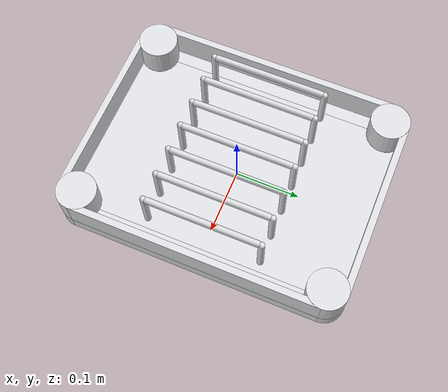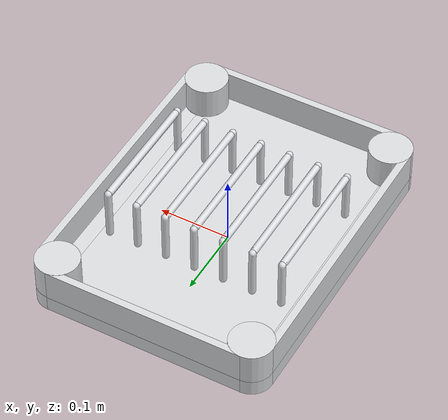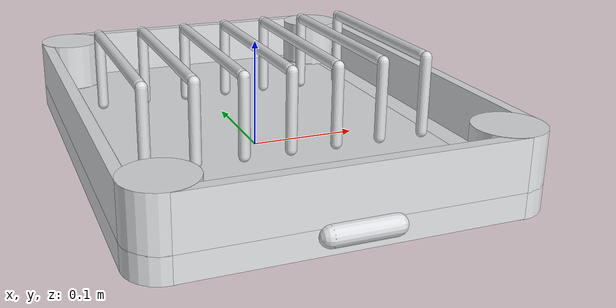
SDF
<?xml version="1.0"?>
<sdf version="1.6">
  <model name="dish_drainer">
    <static>true</static>
    <link name="link">
      <visual name="tray_a">
        <pose>0 0 0.011 0 0 0</pose>
        <geometry><box><size>0.279 0.442 0.022</size></box></geometry>
        <material><pbr><metal><metalness>0.00</metalness><roughness>0.55</roughness></metal></pbr><ambient>0.860 0.870 0.880 1</ambient><diffuse>0.860 0.870 0.880 1</diffuse><specular>0.3 0.3 0.3 1</specular><emissive>0 0 0 1</emissive></material>
      </visual>
      <visual name="tray_b0">
        <pose>-0.1545 0 0.011 0 0 0</pose>
        <geometry><box><size>0.03 0.382 0.022</size></box></geometry>
        <material><pbr><metal><metalness>0.00</metalness><roughness>0.55</roughness></metal></pbr><ambient>0.860 0.870 0.880 1</ambient><diffuse>0.860 0.870 0.880 1</diffuse><specular>0.3 0.3 0.3 1</specular><emissive>0 0 0 1</emissive></material>
      </visual>
      <visual name="tray_b1">
        <pose>0.1545 0 0.011 0 0 0</pose>
        <geometry><box><size>0.03 0.382 0.022</size></box></geometry>
        <material><pbr><metal><metalness>0.00</metalness><roughness>0.55</roughness></metal></pbr><ambient>0.860 0.870 0.880 1</ambient><diffuse>0.860 0.870 0.880 1</diffuse><specular>0.3 0.3 0.3 1</specular><emissive>0 0 0 1</emissive></material>
      </visual>
      <visual name="tray_c0">
        <pose>-0.1395 -0.191 0.011 0 0 0</pose>
        <geometry><cylinder><radius>0.03</radius><length>0.0226</length></cylinder></geometry>
        <material><pbr><metal><metalness>0.00</metalness><roughness>0.55</roughness></metal></pbr><ambient>0.860 0.870 0.880 1</ambient><diffuse>0.860 0.870 0.880 1</diffuse><specular>0.3 0.3 0.3 1</specular><emissive>0 0 0 1</emissive></material>
      </visual>
      <visual name="tray_c1">
        <pose>-0.1395 0.191 0.011 0 0 0</pose>
        <geometry><cylinder><radius>0.03</radius><length>0.02278</length></cylinder></geometry>
        <material><pbr><metal><metalness>0.00</metalness><roughness>0.55</roughness></metal></pbr><ambient>0.860 0.870 0.880 1</ambient><diffuse>0.860 0.870 0.880 1</diffuse><specular>0.3 0.3 0.3 1</specular><emissive>0 0 0 1</emissive></material>
      </visual>
      <visual name="tray_c2">
        <pose>0.1395 -0.191 0.011 0 0 0</pose>
        <geometry><cylinder><radius>0.03</radius><length>0.02296</length></cylinder></geometry>
        <material><pbr><metal><metalness>0.00</metalness><roughness>0.55</roughness></metal></pbr><ambient>0.860 0.870 0.880 1</ambient><diffuse>0.860 0.870 0.880 1</diffuse><specular>0.3 0.3 0.3 1</specular><emissive>0 0 0 1</emissive></material>
      </visual>
      <visual name="tray_c3">
        <pose>0.1395 0.191 0.011 0 0 0</pose>
        <geometry><cylinder><radius>0.03</radius><length>0.02314</length></cylinder></geometry>
        <material><pbr><metal><metalness>0.00</metalness><roughness>0.55</roughness></metal></pbr><ambient>0.860 0.870 0.880 1</ambient><diffuse>0.860 0.870 0.880 1</diffuse><specular>0.3 0.3 0.3 1</specular><emissive>0 0 0 1</emissive></material>
      </visual>
      <visual name="wall_n">
        <pose>0 0.216 0.0445 0 0 0</pose>
        <geometry><box><size>0.279 0.01 0.045</size></box></geometry>
        <material><pbr><metal><metalness>0.00</metalness><roughness>0.55</roughness></metal></pbr><ambient>0.860 0.870 0.880 1</ambient><diffuse>0.860 0.870 0.880 1</diffuse><specular>0.3 0.3 0.3 1</specular><emissive>0 0 0 1</emissive></material>
      </visual>
      <visual name="wall_s">
        <pose>0 -0.216 0.0445 0 0 0</pose>
        <geometry><box><size>0.279 0.01 0.045</size></box></geometry>
        <material><pbr><metal><metalness>0.00</metalness><roughness>0.55</roughness></metal></pbr><ambient>0.860 0.870 0.880 1</ambient><diffuse>0.860 0.870 0.880 1</diffuse><specular>0.3 0.3 0.3 1</specular><emissive>0 0 0 1</emissive></material>
      </visual>
      <visual name="wall_e">
        <pose>0.1645 0 0.0445 0 0 0</pose>
        <geometry><box><size>0.01 0.382 0.045</size></box></geometry>
        <material><pbr><metal><metalness>0.00</metalness><roughness>0.55</roughness></metal></pbr><ambient>0.860 0.870 0.880 1</ambient><diffuse>0.860 0.870 0.880 1</diffuse><specular>0.3 0.3 0.3 1</specular><emissive>0 0 0 1</emissive></material>
      </visual>
      <visual name="wall_w">
        <pose>-0.1645 0 0.0445 0 0 0</pose>
        <geometry><box><size>0.01 0.382 0.045</size></box></geometry>
        <material><pbr><metal><metalness>0.00</metalness><roughness>0.55</roughness></metal></pbr><ambient>0.860 0.870 0.880 1</ambient><diffuse>0.860 0.870 0.880 1</diffuse><specular>0.3 0.3 0.3 1</specular><emissive>0 0 0 1</emissive></material>
      </visual>
      <visual name="wall_corner0">
        <pose>-0.1395 -0.191 0.0445 0 0 0</pose>
        <geometry><cylinder><radius>0.03</radius><length>0.0456</length></cylinder></geometry>
        <material><pbr><metal><metalness>0.00</metalness><roughness>0.55</roughness></metal></pbr><ambient>0.860 0.870 0.880 1</ambient><diffuse>0.860 0.870 0.880 1</diffuse><specular>0.3 0.3 0.3 1</specular><emissive>0 0 0 1</emissive></material>
      </visual>
      <visual name="wall_corner1">
        <pose>-0.1395 0.191 0.0445 0 0 0</pose>
        <geometry><cylinder><radius>0.03</radius><length>0.0456</length></cylinder></geometry>
        <material><pbr><metal><metalness>0.00</metalness><roughness>0.55</roughness></metal></pbr><ambient>0.860 0.870 0.880 1</ambient><diffuse>0.860 0.870 0.880 1</diffuse><specular>0.3 0.3 0.3 1</specular><emissive>0 0 0 1</emissive></material>
      </visual>
      <visual name="wall_corner2">
        <pose>0.1395 -0.191 0.0445 0 0 0</pose>
        <geometry><cylinder><radius>0.03</radius><length>0.0456</length></cylinder></geometry>
        <material><pbr><metal><metalness>0.00</metalness><roughness>0.55</roughness></metal></pbr><ambient>0.860 0.870 0.880 1</ambient><diffuse>0.860 0.870 0.880 1</diffuse><specular>0.3 0.3 0.3 1</specular><emissive>0 0 0 1</emissive></material>
      </visual>
      <visual name="wall_corner3">
        <pose>0.1395 0.191 0.0445 0 0 0</pose>
        <geometry><cylinder><radius>0.03</radius><length>0.0456</length></cylinder></geometry>
        <material><pbr><metal><metalness>0.00</metalness><roughness>0.55</roughness></metal></pbr><ambient>0.860 0.870 0.880 1</ambient><diffuse>0.860 0.870 0.880 1</diffuse><specular>0.3 0.3 0.3 1</specular><emissive>0 0 0 1</emissive></material>
      </visual>
      <visual name="div0_post0">
        <pose>-0.126 -0.088 0.0615 0 0 0</pose>
        <geometry><capsule><radius>0.005</radius><length>0.069</length></capsule></geometry>
        <material><pbr><metal><metalness>0.00</metalness><roughness>0.55</roughness></metal></pbr><ambient>0.860 0.870 0.880 1</ambient><diffuse>0.860 0.870 0.880 1</diffuse><specular>0.3 0.3 0.3 1</specular><emissive>0 0 0 1</emissive></material>
      </visual>
      <visual name="div0_post1">
        <pose>-0.126 0.088 0.0615 0 0 0</pose>
        <geometry><capsule><radius>0.005</radius><length>0.069</length></capsule></geometry>
        <material><pbr><metal><metalness>0.00</metalness><roughness>0.55</roughness></metal></pbr><ambient>0.860 0.870 0.880 1</ambient><diffuse>0.860 0.870 0.880 1</diffuse><specular>0.3 0.3 0.3 1</specular><emissive>0 0 0 1</emissive></material>
      </visual>
      <visual name="div0_top">
        <pose>-0.126 0 0.096 1.570796 0 0</pose>
        <geometry><capsule><radius>0.005</radius><length>0.166</length></capsule></geometry>
        <material><pbr><metal><metalness>0.00</metalness><roughness>0.55</roughness></metal></pbr><ambient>0.860 0.870 0.880 1</ambient><diffuse>0.860 0.870 0.880 1</diffuse><specular>0.3 0.3 0.3 1</specular><emissive>0 0 0 1</emissive></material>
      </visual>
      <visual name="div1_post0">
        <pose>-0.084 -0.088 0.0615 0 0 0</pose>
        <geometry><capsule><radius>0.005</radius><length>0.069</length></capsule></geometry>
        <material><pbr><metal><metalness>0.00</metalness><roughness>0.55</roughness></metal></pbr><ambient>0.860 0.870 0.880 1</ambient><diffuse>0.860 0.870 0.880 1</diffuse><specular>0.3 0.3 0.3 1</specular><emissive>0 0 0 1</emissive></material>
      </visual>
      <visual name="div1_post1">
        <pose>-0.084 0.088 0.0615 0 0 0</pose>
        <geometry><capsule><radius>0.005</radius><length>0.069</length></capsule></geometry>
        <material><pbr><metal><metalness>0.00</metalness><roughness>0.55</roughness></metal></pbr><ambient>0.860 0.870 0.880 1</ambient><diffuse>0.860 0.870 0.880 1</diffuse><specular>0.3 0.3 0.3 1</specular><emissive>0 0 0 1</emissive></material>
      </visual>
      <visual name="div1_top">
        <pose>-0.084 0 0.096 1.570796 0 0</pose>
        <geometry><capsule><radius>0.005</radius><length>0.166</length></capsule></geometry>
        <material><pbr><metal><metalness>0.00</metalness><roughness>0.55</roughness></metal></pbr><ambient>0.860 0.870 0.880 1</ambient><diffuse>0.860 0.870 0.880 1</diffuse><specular>0.3 0.3 0.3 1</specular><emissive>0 0 0 1</emissive></material>
      </visual>
      <visual name="div2_post0">
        <pose>-0.042 -0.088 0.0615 0 0 0</pose>
        <geometry><capsule><radius>0.005</radius><length>0.069</length></capsule></geometry>
        <material><pbr><metal><metalness>0.00</metalness><roughness>0.55</roughness></metal></pbr><ambient>0.860 0.870 0.880 1</ambient><diffuse>0.860 0.870 0.880 1</diffuse><specular>0.3 0.3 0.3 1</specular><emissive>0 0 0 1</emissive></material>
      </visual>
      <visual name="div2_post1">
        <pose>-0.042 0.088 0.0615 0 0 0</pose>
        <geometry><capsule><radius>0.005</radius><length>0.069</length></capsule></geometry>
        <material><pbr><metal><metalness>0.00</metalness><roughness>0.55</roughness></metal></pbr><ambient>0.860 0.870 0.880 1</ambient><diffuse>0.860 0.870 0.880 1</diffuse><specular>0.3 0.3 0.3 1</specular><emissive>0 0 0 1</emissive></material>
      </visual>
      <visual name="div2_top">
        <pose>-0.042 0 0.096 1.570796 0 0</pose>
        <geometry><capsule><radius>0.005</radius><length>0.166</length></capsule></geometry>
        <material><pbr><metal><metalness>0.00</metalness><roughness>0.55</roughness></metal></pbr><ambient>0.860 0.870 0.880 1</ambient><diffuse>0.860 0.870 0.880 1</diffuse><specular>0.3 0.3 0.3 1</specular><emissive>0 0 0 1</emissive></material>
      </visual>
      <visual name="div3_post0">
        <pose>0 -0.088 0.0615 0 0 0</pose>
        <geometry><capsule><radius>0.005</radius><length>0.069</length></capsule></geometry>
        <material><pbr><metal><metalness>0.00</metalness><roughness>0.55</roughness></metal></pbr><ambient>0.860 0.870 0.880 1</ambient><diffuse>0.860 0.870 0.880 1</diffuse><specular>0.3 0.3 0.3 1</specular><emissive>0 0 0 1</emissive></material>
      </visual>
      <visual name="div3_post1">
        <pose>0 0.088 0.0615 0 0 0</pose>
        <geometry><capsule><radius>0.005</radius><length>0.069</length></capsule></geometry>
        <material><pbr><metal><metalness>0.00</metalness><roughness>0.55</roughness></metal></pbr><ambient>0.860 0.870 0.880 1</ambient><diffuse>0.860 0.870 0.880 1</diffuse><specular>0.3 0.3 0.3 1</specular><emissive>0 0 0 1</emissive></material>
      </visual>
      <visual name="div3_top">
        <pose>0 0 0.096 1.570796 0 0</pose>
        <geometry><capsule><radius>0.005</radius><length>0.166</length></capsule></geometry>
        <material><pbr><metal><metalness>0.00</metalness><roughness>0.55</roughness></metal></pbr><ambient>0.860 0.870 0.880 1</ambient><diffuse>0.860 0.870 0.880 1</diffuse><specular>0.3 0.3 0.3 1</specular><emissive>0 0 0 1</emissive></material>
      </visual>
      <visual name="div4_post0">
        <pose>0.042 -0.088 0.0615 0 0 0</pose>
        <geometry><capsule><radius>0.005</radius><length>0.069</length></capsule></geometry>
        <material><pbr><metal><metalness>0.00</metalness><roughness>0.55</roughness></metal></pbr><ambient>0.860 0.870 0.880 1</ambient><diffuse>0.860 0.870 0.880 1</diffuse><specular>0.3 0.3 0.3 1</specular><emissive>0 0 0 1</emissive></material>
      </visual>
      <visual name="div4_post1">
        <pose>0.042 0.088 0.0615 0 0 0</pose>
        <geometry><capsule><radius>0.005</radius><length>0.069</length></capsule></geometry>
        <material><pbr><metal><metalness>0.00</metalness><roughness>0.55</roughness></metal></pbr><ambient>0.860 0.870 0.880 1</ambient><diffuse>0.860 0.870 0.880 1</diffuse><specular>0.3 0.3 0.3 1</specular><emissive>0 0 0 1</emissive></material>
      </visual>
      <visual name="div4_top">
        <pose>0.042 0 0.096 1.570796 0 0</pose>
        <geometry><capsule><radius>0.005</radius><length>0.166</length></capsule></geometry>
        <material><pbr><metal><metalness>0.00</metalness><roughness>0.55</roughness></metal></pbr><ambient>0.860 0.870 0.880 1</ambient><diffuse>0.860 0.870 0.880 1</diffuse><specular>0.3 0.3 0.3 1</specular><emissive>0 0 0 1</emissive></material>
      </visual>
      <visual name="div5_post0">
        <pose>0.084 -0.088 0.0615 0 0 0</pose>
        <geometry><capsule><radius>0.005</radius><length>0.069</length></capsule></geometry>
        <material><pbr><metal><metalness>0.00</metalness><roughness>0.55</roughness></metal></pbr><ambient>0.860 0.870 0.880 1</ambient><diffuse>0.860 0.870 0.880 1</diffuse><specular>0.3 0.3 0.3 1</specular><emissive>0 0 0 1</emissive></material>
      </visual>
      <visual name="div5_post1">
        <pose>0.084 0.088 0.0615 0 0 0</pose>
        <geometry><capsule><radius>0.005</radius><length>0.069</length></capsule></geometry>
        <material><pbr><metal><metalness>0.00</metalness><roughness>0.55</roughness></metal></pbr><ambient>0.860 0.870 0.880 1</ambient><diffuse>0.860 0.870 0.880 1</diffuse><specular>0.3 0.3 0.3 1</specular><emissive>0 0 0 1</emissive></material>
      </visual>
      <visual name="div5_top">
        <pose>0.084 0 0.096 1.570796 0 0</pose>
        <geometry><capsule><radius>0.005</radius><length>0.166</length></capsule></geometry>
        <material><pbr><metal><metalness>0.00</metalness><roughness>0.55</roughness></metal></pbr><ambient>0.860 0.870 0.880 1</ambient><diffuse>0.860 0.870 0.880 1</diffuse><specular>0.3 0.3 0.3 1</specular><emissive>0 0 0 1</emissive></material>
      </visual>
      <visual name="div6_post0">
        <pose>0.126 -0.088 0.0615 0 0 0</pose>
        <geometry><capsule><radius>0.005</radius><length>0.069</length></capsule></geometry>
        <material><pbr><metal><metalness>0.00</metalness><roughness>0.55</roughness></metal></pbr><ambient>0.860 0.870 0.880 1</ambient><diffuse>0.860 0.870 0.880 1</diffuse><specular>0.3 0.3 0.3 1</specular><emissive>0 0 0 1</emissive></material>
      </visual>
      <visual name="div6_post1">
        <pose>0.126 0.088 0.0615 0 0 0</pose>
        <geometry><capsule><radius>0.005</radius><length>0.069</length></capsule></geometry>
        <material><pbr><metal><metalness>0.00</metalness><roughness>0.55</roughness></metal></pbr><ambient>0.860 0.870 0.880 1</ambient><diffuse>0.860 0.870 0.880 1</diffuse><specular>0.3 0.3 0.3 1</specular><emissive>0 0 0 1</emissive></material>
      </visual>
      <visual name="div6_top">
        <pose>0.126 0 0.096 1.570796 0 0</pose>
        <geometry><capsule><radius>0.005</radius><length>0.166</length></capsule></geometry>
        <material><pbr><metal><metalness>0.00</metalness><roughness>0.55</roughness></metal></pbr><ambient>0.860 0.870 0.880 1</ambient><diffuse>0.860 0.870 0.880 1</diffuse><specular>0.3 0.3 0.3 1</specular><emissive>0 0 0 1</emissive></material>
      </visual>
      <visual name="spout">
        <pose>0 -0.222 0.016 0 1.570796 0</pose>
        <geometry><capsule><radius>0.009</radius><length>0.052</length></capsule></geometry>
        <material><pbr><metal><metalness>0.00</metalness><roughness>0.55</roughness></metal></pbr><ambient>0.860 0.870 0.880 1</ambient><diffuse>0.860 0.870 0.880 1</diffuse><specular>0.3 0.3 0.3 1</specular><emissive>0 0 0 1</emissive></material>
      </visual>
      <collision name="body">
        <pose>0 0 0.0605 0 0 0</pose>
        <geometry><box><size>0.339 0.442 0.121</size></box></geometry>
      </collision>
    </link>
    <allow_auto_disable>1</allow_auto_disable>
  </model>
</sdf>
